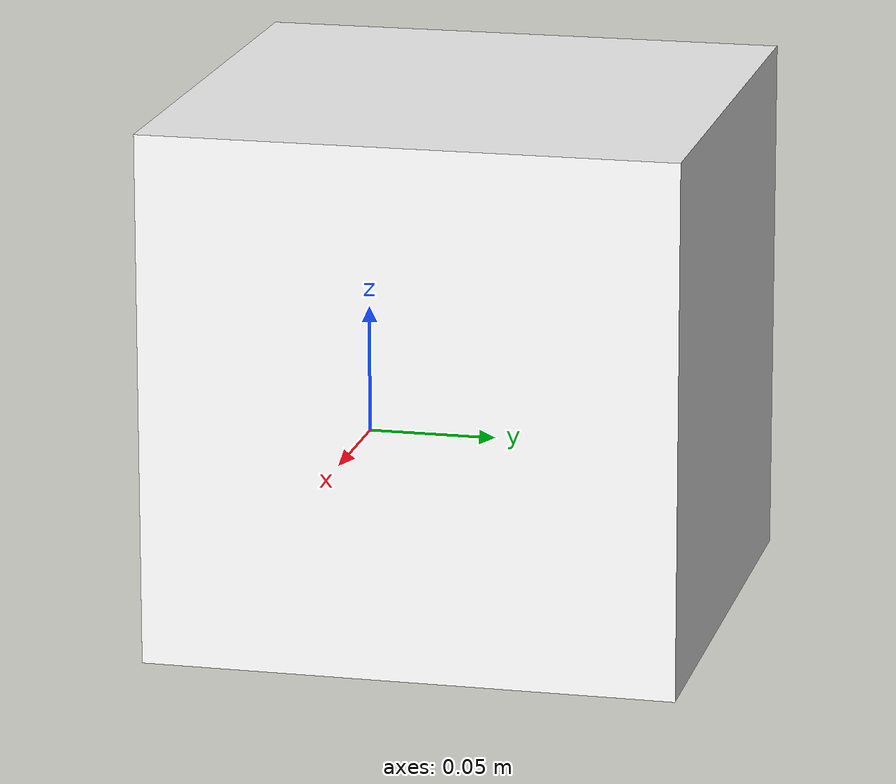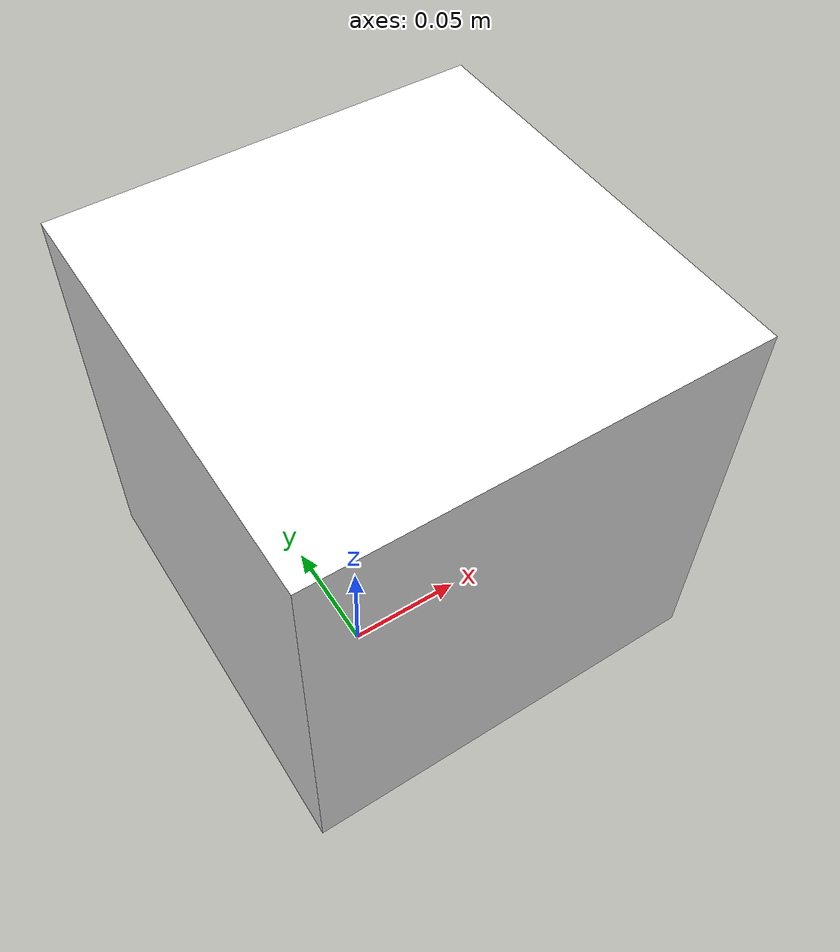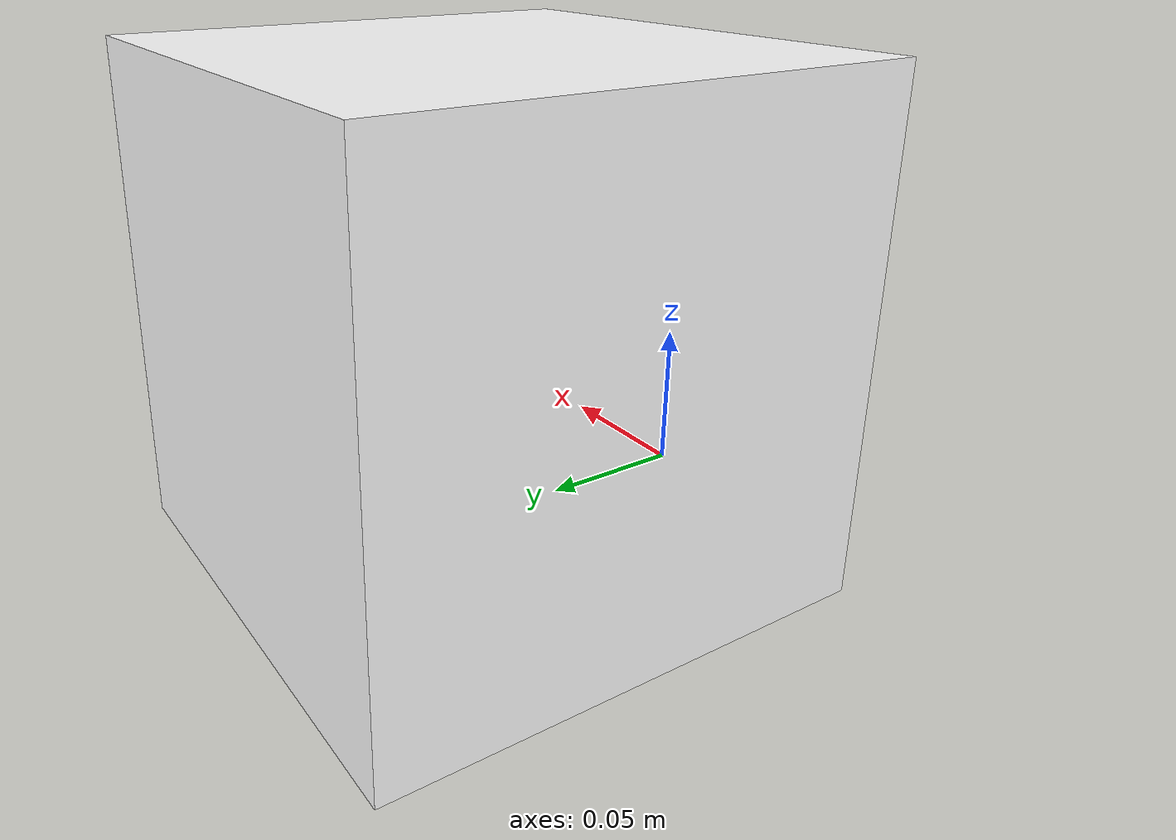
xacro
<?xml version="1.0"?>
<robot xmlns:xacro="http://www.ros.org/wiki/xacro" name="test_cyl" >
    <xacro:property name="body_aprox_x" value="0.2"/>
    <xacro:property name="body_aprox_y" value="0.2"/>
    <xacro:property name="body_aprox_z" value="0.2"/>
    <xacro:property name="body_mass" value="1"/>
    <xacro:property name="body_shift_x" value="0.05"/>
    <xacro:property name="body_shift_y" value="0.05"/>
    <xacro:property name="body_shift_z" value="0.05"/>

    <link name="body_link">
        <visual>
            <origin xyz="${body_shift_x} ${body_shift_y} ${body_shift_z}" rpy=" 0 0 0"/>
            <geometry>
                <box size="${body_aprox_x} ${body_aprox_y} ${body_aprox_z}"/>
            </geometry>
            <material name="white">
                <color rgba="1 1 1 1"/>
            </material>
        </visual>

        <collision name="body_link_collision">
            <origin xyz="${body_shift_x} ${body_shift_y} ${body_shift_z}" rpy=" 0 0 0"/>
            <geometry>
                <box size="${body_aprox_x} ${body_aprox_y} ${body_aprox_z}"/>
            </geometry>
        </collision>

        <inertial>
            <origin xyz="${body_shift_x} ${body_shift_y} ${body_shift_z}" rpy="0 0 0"/>
            <mass value="${body_mass}"/>
            <inertia
                ixx="${0.08*body_mass*(body_aprox_y*body_aprox_y+body_aprox_z*body_aprox_z)}" ixy="0" ixz="0"
                iyy="${0.08*body_mass*(body_aprox_x*body_aprox_x+body_aprox_z*body_aprox_z)}" iyz="0"
                izz="${0.08*body_mass*(body_aprox_x*body_aprox_x+body_aprox_y*body_aprox_y)}"
            />

        </inertial>
    </link>
</robot>
